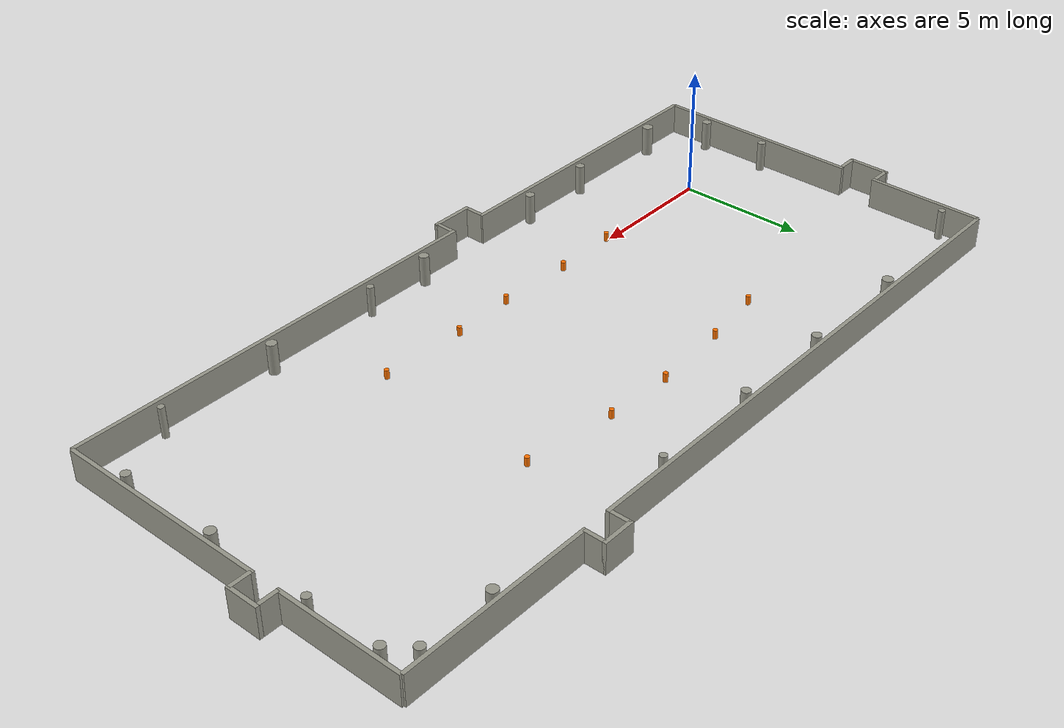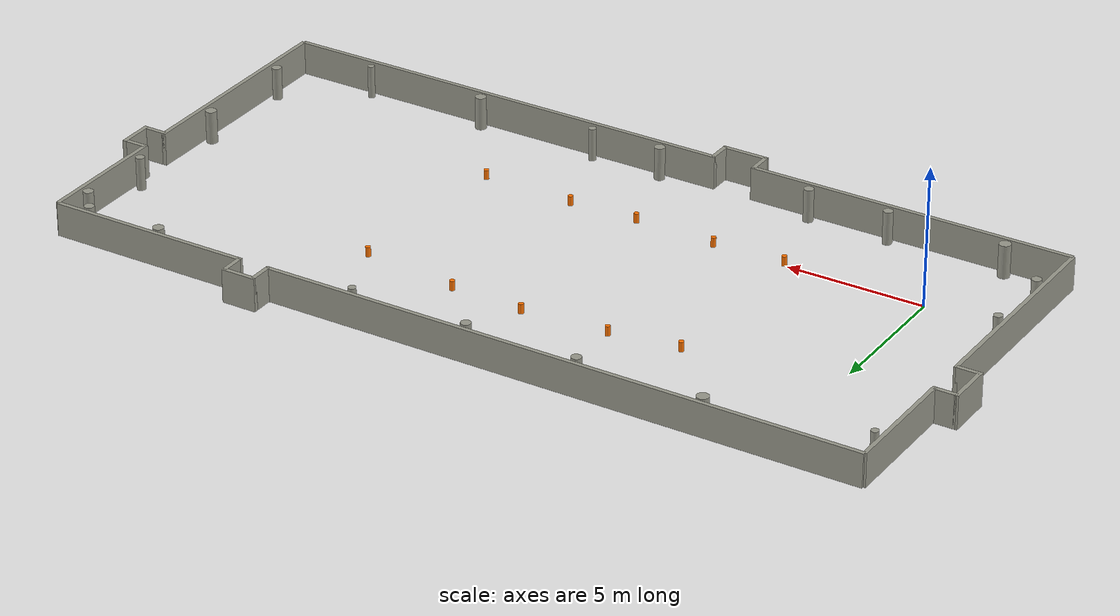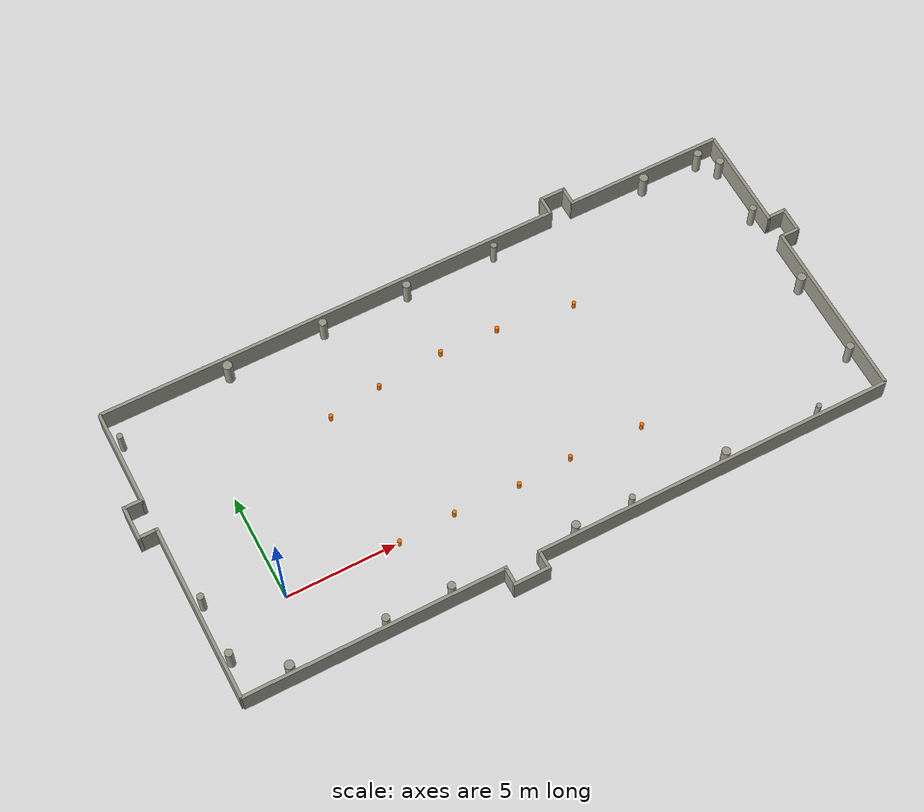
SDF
<sdf version="1.9">
 <world name="default">
  <model name="track_obstacle">
   <static>true</static>
   <link name="obstacle_link">
    <collision name="cone_0_collision">
     <pose>5.152844 -0.050000 0.175000 0.000000 0.000000 0.000000</pose>
     <geometry><cylinder><radius>0.090000</radius><length>0.350000</length></cylinder></geometry>
    </collision>
    <visual name="cone_0_visual">
     <pose>5.152844 -0.050000 0.175000 0.000000 0.000000 0.000000</pose>
     <geometry><cylinder><radius>0.090000</radius><length>0.350000</length></cylinder></geometry>
     <material><ambient>1.0 0.45 0.0 1</ambient><diffuse>1.0 0.45 0.0 1</diffuse></material>
    </visual>
    <collision name="cone_1_collision">
     <pose>7.752844 0.050000 0.175000 0.000000 0.000000 0.000000</pose>
     <geometry><cylinder><radius>0.090000</radius><length>0.350000</length></cylinder></geometry>
    </collision>
    <visual name="cone_1_visual">
     <pose>7.752844 0.050000 0.175000 0.000000 0.000000 0.000000</pose>
     <geometry><cylinder><radius>0.090000</radius><length>0.350000</length></cylinder></geometry>
     <material><ambient>1.0 0.45 0.0 1</ambient><diffuse>1.0 0.45 0.0 1</diffuse></material>
    </visual>
    <collision name="cone_2_collision">
     <pose>10.752844 -0.050000 0.175000 0.000000 0.000000 0.000000</pose>
     <geometry><cylinder><radius>0.090000</radius><length>0.350000</length></cylinder></geometry>
    </collision>
    <visual name="cone_2_visual">
     <pose>10.752844 -0.050000 0.175000 0.000000 0.000000 0.000000</pose>
     <geometry><cylinder><radius>0.090000</radius><length>0.350000</length></cylinder></geometry>
     <material><ambient>1.0 0.45 0.0 1</ambient><diffuse>1.0 0.45 0.0 1</diffuse></material>
    </visual>
    <collision name="cone_3_collision">
     <pose>13.252844 0.050000 0.175000 0.000000 0.000000 0.000000</pose>
     <geometry><cylinder><radius>0.090000</radius><length>0.350000</length></cylinder></geometry>
    </collision>
    <visual name="cone_3_visual">
     <pose>13.252844 0.050000 0.175000 0.000000 0.000000 0.000000</pose>
     <geometry><cylinder><radius>0.090000</radius><length>0.350000</length></cylinder></geometry>
     <material><ambient>1.0 0.45 0.0 1</ambient><diffuse>1.0 0.45 0.0 1</diffuse></material>
    </visual>
    <collision name="cone_4_collision">
     <pose>16.652844 -0.050000 0.175000 0.000000 0.000000 0.000000</pose>
     <geometry><cylinder><radius>0.090000</radius><length>0.350000</length></cylinder></geometry>
    </collision>
    <visual name="cone_4_visual">
     <pose>16.652844 -0.050000 0.175000 0.000000 0.000000 0.000000</pose>
     <geometry><cylinder><radius>0.090000</radius><length>0.350000</length></cylinder></geometry>
     <material><ambient>1.0 0.45 0.0 1</ambient><diffuse>1.0 0.45 0.0 1</diffuse></material>
    </visual>
    <collision name="cone_5_collision">
     <pose>17.027834 6.546967 0.175000 0.000000 0.000000 0.000000</pose>
     <geometry><cylinder><radius>0.090000</radius><length>0.350000</length></cylinder></geometry>
    </collision>
    <visual name="cone_5_visual">
     <pose>17.027834 6.546967 0.175000 0.000000 0.000000 0.000000</pose>
     <geometry><cylinder><radius>0.090000</radius><length>0.350000</length></cylinder></geometry>
     <material><ambient>1.0 0.45 0.0 1</ambient><diffuse>1.0 0.45 0.0 1</diffuse></material>
    </visual>
    <collision name="cone_6_collision">
     <pose>13.455651 7.004684 0.175000 0.000000 0.000000 0.000000</pose>
     <geometry><cylinder><radius>0.090000</radius><length>0.350000</length></cylinder></geometry>
    </collision>
    <visual name="cone_6_visual">
     <pose>13.455651 7.004684 0.175000 0.000000 0.000000 0.000000</pose>
     <geometry><cylinder><radius>0.090000</radius><length>0.350000</length></cylinder></geometry>
     <material><ambient>1.0 0.45 0.0 1</ambient><diffuse>1.0 0.45 0.0 1</diffuse></material>
    </visual>
    <collision name="cone_7_collision">
     <pose>10.764864 7.120115 0.175000 0.000000 0.000000 0.000000</pose>
     <geometry><cylinder><radius>0.090000</radius><length>0.350000</length></cylinder></geometry>
    </collision>
    <visual name="cone_7_visual">
     <pose>10.764864 7.120115 0.175000 0.000000 0.000000 0.000000</pose>
     <geometry><cylinder><radius>0.090000</radius><length>0.350000</length></cylinder></geometry>
     <material><ambient>1.0 0.45 0.0 1</ambient><diffuse>1.0 0.45 0.0 1</diffuse></material>
    </visual>
    <collision name="cone_8_collision">
     <pose>7.674148 6.887476 0.175000 0.000000 0.000000 0.000000</pose>
     <geometry><cylinder><radius>0.090000</radius><length>0.350000</length></cylinder></geometry>
    </collision>
    <visual name="cone_8_visual">
     <pose>7.674148 6.887476 0.175000 0.000000 0.000000 0.000000</pose>
     <geometry><cylinder><radius>0.090000</radius><length>0.350000</length></cylinder></geometry>
     <material><ambient>1.0 0.45 0.0 1</ambient><diffuse>1.0 0.45 0.0 1</diffuse></material>
    </visual>
    <collision name="cone_9_collision">
     <pose>5.199737 6.516947 0.175000 0.000000 0.000000 0.000000</pose>
     <geometry><cylinder><radius>0.090000</radius><length>0.350000</length></cylinder></geometry>
    </collision>
    <visual name="cone_9_visual">
     <pose>5.199737 6.516947 0.175000 0.000000 0.000000 0.000000</pose>
     <geometry><cylinder><radius>0.090000</radius><length>0.350000</length></cylinder></geometry>
     <material><ambient>1.0 0.45 0.0 1</ambient><diffuse>1.0 0.45 0.0 1</diffuse></material>
    </visual>
   </link>
  </model>
  <model name="track_room">
   <static>true</static>
   <link name="room_link">
    <collision name="hall_0_0_collision">
     <pose>2.418237 -3.500000 0.600000 0.000000 0.000000 0.000000</pose>
     <geometry><box><size>11.836475 0.150000 1.200000</size></box></geometry>
    </collision>
    <visual name="hall_0_0_visual">
     <pose>2.418237 -3.500000 0.600000 0.000000 0.000000 0.000000</pose>
     <geometry><box><size>11.836475 0.150000 1.200000</size></box></geometry>
     <material><ambient>0.6 0.6 0.55 1</ambient><diffuse>0.6 0.6 0.55 1</diffuse></material>
    </visual>
    <collision name="hall_0_132_collision">
     <pose>18.120005 -3.500000 0.600000 0.000000 0.000000 0.000000</pose>
     <geometry><box><size>16.759990 0.150000 1.200000</size></box></geometry>
    </collision>
    <visual name="hall_0_132_visual">
     <pose>18.120005 -3.500000 0.600000 0.000000 0.000000 0.000000</pose>
     <geometry><box><size>16.759990 0.150000 1.200000</size></box></geometry>
     <material><ambient>0.6 0.6 0.55 1</ambient><diffuse>0.6 0.6 0.55 1</diffuse></material>
    </visual>
    <collision name="hall_niche_0_collision">
     <pose>9.038242 -4.300000 0.600000 0.000000 0.000000 0.000000</pose>
     <geometry><box><size>1.703535 0.150000 1.200000</size></box></geometry>
    </collision>
    <visual name="hall_niche_0_visual">
     <pose>9.038242 -4.300000 0.600000 0.000000 0.000000 0.000000</pose>
     <geometry><box><size>1.703535 0.150000 1.200000</size></box></geometry>
     <material><ambient>0.6 0.6 0.55 1</ambient><diffuse>0.6 0.6 0.55 1</diffuse></material>
    </visual>
    <collision name="hall_jamb_0_-1_collision">
     <pose>8.261475 -3.900000 0.600000 0.000000 0.000000 0.000000</pose>
     <geometry><box><size>0.150000 0.800000 1.200000</size></box></geometry>
    </collision>
    <visual name="hall_jamb_0_-1_visual">
     <pose>8.261475 -3.900000 0.600000 0.000000 0.000000 0.000000</pose>
     <geometry><box><size>0.150000 0.800000 1.200000</size></box></geometry>
     <material><ambient>0.6 0.6 0.55 1</ambient><diffuse>0.6 0.6 0.55 1</diffuse></material>
    </visual>
    <collision name="hall_jamb_0_1_collision">
     <pose>9.815010 -3.900000 0.600000 0.000000 0.000000 0.000000</pose>
     <geometry><box><size>0.150000 0.800000 1.200000</size></box></geometry>
    </collision>
    <visual name="hall_jamb_0_1_visual">
     <pose>9.815010 -3.900000 0.600000 0.000000 0.000000 0.000000</pose>
     <geometry><box><size>0.150000 0.800000 1.200000</size></box></geometry>
     <material><ambient>0.6 0.6 0.55 1</ambient><diffuse>0.6 0.6 0.55 1</diffuse></material>
    </visual>
    <collision name="hall_1_0_collision">
     <pose>26.500000 0.679222 0.600000 0.000000 0.000000 1.570796</pose>
     <geometry><box><size>8.358443 0.150000 1.200000</size></box></geometry>
    </collision>
    <visual name="hall_1_0_visual">
     <pose>26.500000 0.679222 0.600000 0.000000 0.000000 1.570796</pose>
     <geometry><box><size>8.358443 0.150000 1.200000</size></box></geometry>
     <material><ambient>0.6 0.6 0.55 1</ambient><diffuse>0.6 0.6 0.55 1</diffuse></material>
    </visual>
    <collision name="hall_1_93_collision">
     <pose>26.500000 8.255977 0.600000 0.000000 0.000000 1.570796</pose>
     <geometry><box><size>4.844528 0.150000 1.200000</size></box></geometry>
    </collision>
    <visual name="hall_1_93_visual">
     <pose>26.500000 8.255977 0.600000 0.000000 0.000000 1.570796</pose>
     <geometry><box><size>4.844528 0.150000 1.200000</size></box></geometry>
     <material><ambient>0.6 0.6 0.55 1</ambient><diffuse>0.6 0.6 0.55 1</diffuse></material>
    </visual>
    <collision name="hall_niche_1_collision">
     <pose>27.300000 5.346078 0.600000 0.000000 0.000000 1.570796</pose>
     <geometry><box><size>1.275270 0.150000 1.200000</size></box></geometry>
    </collision>
    <visual name="hall_niche_1_visual">
     <pose>27.300000 5.346078 0.600000 0.000000 0.000000 1.570796</pose>
     <geometry><box><size>1.275270 0.150000 1.200000</size></box></geometry>
     <material><ambient>0.6 0.6 0.55 1</ambient><diffuse>0.6 0.6 0.55 1</diffuse></material>
    </visual>
    <collision name="hall_jamb_1_-1_collision">
     <pose>26.900000 4.783443 0.600000 0.000000 0.000000 1.570796</pose>
     <geometry><box><size>0.150000 0.800000 1.200000</size></box></geometry>
    </collision>
    <visual name="hall_jamb_1_-1_visual">
     <pose>26.900000 4.783443 0.600000 0.000000 0.000000 1.570796</pose>
     <geometry><box><size>0.150000 0.800000 1.200000</size></box></geometry>
     <material><ambient>0.6 0.6 0.55 1</ambient><diffuse>0.6 0.6 0.55 1</diffuse></material>
    </visual>
    <collision name="hall_jamb_1_1_collision">
     <pose>26.900000 5.908713 0.600000 0.000000 0.000000 1.570796</pose>
     <geometry><box><size>0.150000 0.800000 1.200000</size></box></geometry>
    </collision>
    <visual name="hall_jamb_1_1_visual">
     <pose>26.900000 5.908713 0.600000 0.000000 0.000000 1.570796</pose>
     <geometry><box><size>0.150000 0.800000 1.200000</size></box></geometry>
     <material><ambient>0.6 0.6 0.55 1</ambient><diffuse>0.6 0.6 0.55 1</diffuse></material>
    </visual>
    <collision name="hall_2_0_collision">
     <pose>22.812649 10.678241 0.600000 0.000000 0.000000 3.141593</pose>
     <geometry><box><size>7.374702 0.150000 1.200000</size></box></geometry>
    </collision>
    <visual name="hall_2_0_visual">
     <pose>22.812649 10.678241 0.600000 0.000000 0.000000 3.141593</pose>
     <geometry><box><size>7.374702 0.150000 1.200000</size></box></geometry>
     <material><ambient>0.6 0.6 0.55 1</ambient><diffuse>0.6 0.6 0.55 1</diffuse></material>
    </visual>
    <collision name="hall_2_83_collision">
     <pose>7.332707 10.678241 0.600000 0.000000 0.000000 3.141593</pose>
     <geometry><box><size>21.665414 0.150000 1.200000</size></box></geometry>
    </collision>
    <visual name="hall_2_83_visual">
     <pose>7.332707 10.678241 0.600000 0.000000 0.000000 3.141593</pose>
     <geometry><box><size>21.665414 0.150000 1.200000</size></box></geometry>
     <material><ambient>0.6 0.6 0.55 1</ambient><diffuse>0.6 0.6 0.55 1</diffuse></material>
    </visual>
    <collision name="hall_niche_2_collision">
     <pose>18.645356 11.478241 0.600000 0.000000 0.000000 3.141593</pose>
     <geometry><box><size>1.259884 0.150000 1.200000</size></box></geometry>
    </collision>
    <visual name="hall_niche_2_visual">
     <pose>18.645356 11.478241 0.600000 0.000000 0.000000 3.141593</pose>
     <geometry><box><size>1.259884 0.150000 1.200000</size></box></geometry>
     <material><ambient>0.6 0.6 0.55 1</ambient><diffuse>0.6 0.6 0.55 1</diffuse></material>
    </visual>
    <collision name="hall_jamb_2_-1_collision">
     <pose>19.200298 11.078241 0.600000 0.000000 0.000000 3.141593</pose>
     <geometry><box><size>0.150000 0.800000 1.200000</size></box></geometry>
    </collision>
    <visual name="hall_jamb_2_-1_visual">
     <pose>19.200298 11.078241 0.600000 0.000000 0.000000 3.141593</pose>
     <geometry><box><size>0.150000 0.800000 1.200000</size></box></geometry>
     <material><ambient>0.6 0.6 0.55 1</ambient><diffuse>0.6 0.6 0.55 1</diffuse></material>
    </visual>
    <collision name="hall_jamb_2_1_collision">
     <pose>18.090414 11.078241 0.600000 0.000000 0.000000 3.141593</pose>
     <geometry><box><size>0.150000 0.800000 1.200000</size></box></geometry>
    </collision>
    <visual name="hall_jamb_2_1_visual">
     <pose>18.090414 11.078241 0.600000 0.000000 0.000000 3.141593</pose>
     <geometry><box><size>0.150000 0.800000 1.200000</size></box></geometry>
     <material><ambient>0.6 0.6 0.55 1</ambient><diffuse>0.6 0.6 0.55 1</diffuse></material>
    </visual>
    <collision name="hall_3_0_collision">
     <pose>-3.500000 8.404651 0.600000 0.000000 0.000000 -1.570796</pose>
     <geometry><box><size>4.547180 0.150000 1.200000</size></box></geometry>
    </collision>
    <visual name="hall_3_0_visual">
     <pose>-3.500000 8.404651 0.600000 0.000000 0.000000 -1.570796</pose>
     <geometry><box><size>4.547180 0.150000 1.200000</size></box></geometry>
     <material><ambient>0.6 0.6 0.55 1</ambient><diffuse>0.6 0.6 0.55 1</diffuse></material>
    </visual>
    <collision name="hall_3_59_collision">
     <pose>-3.500000 0.634839 0.600000 0.000000 0.000000 -1.570796</pose>
     <geometry><box><size>8.269678 0.150000 1.200000</size></box></geometry>
    </collision>
    <visual name="hall_3_59_visual">
     <pose>-3.500000 0.634839 0.600000 0.000000 0.000000 -1.570796</pose>
     <geometry><box><size>8.269678 0.150000 1.200000</size></box></geometry>
     <material><ambient>0.6 0.6 0.55 1</ambient><diffuse>0.6 0.6 0.55 1</diffuse></material>
    </visual>
    <collision name="hall_niche_3_collision">
     <pose>-4.300000 5.450369 0.600000 0.000000 0.000000 -1.570796</pose>
     <geometry><box><size>1.661383 0.150000 1.200000</size></box></geometry>
    </collision>
    <visual name="hall_niche_3_visual">
     <pose>-4.300000 5.450369 0.600000 0.000000 0.000000 -1.570796</pose>
     <geometry><box><size>1.661383 0.150000 1.200000</size></box></geometry>
     <material><ambient>0.6 0.6 0.55 1</ambient><diffuse>0.6 0.6 0.55 1</diffuse></material>
    </visual>
    <collision name="hall_jamb_3_-1_collision">
     <pose>-3.900000 6.206061 0.600000 0.000000 0.000000 -1.570796</pose>
     <geometry><box><size>0.150000 0.800000 1.200000</size></box></geometry>
    </collision>
    <visual name="hall_jamb_3_-1_visual">
     <pose>-3.900000 6.206061 0.600000 0.000000 0.000000 -1.570796</pose>
     <geometry><box><size>0.150000 0.800000 1.200000</size></box></geometry>
     <material><ambient>0.6 0.6 0.55 1</ambient><diffuse>0.6 0.6 0.55 1</diffuse></material>
    </visual>
    <collision name="hall_jamb_3_1_collision">
     <pose>-3.900000 4.694678 0.600000 0.000000 0.000000 -1.570796</pose>
     <geometry><box><size>0.150000 0.800000 1.200000</size></box></geometry>
    </collision>
    <visual name="hall_jamb_3_1_visual">
     <pose>-3.900000 4.694678 0.600000 0.000000 0.000000 -1.570796</pose>
     <geometry><box><size>0.150000 0.800000 1.200000</size></box></geometry>
     <material><ambient>0.6 0.6 0.55 1</ambient><diffuse>0.6 0.6 0.55 1</diffuse></material>
    </visual>
    <collision name="column_0_22_collision">
     <pose>-1.245422 -3.150000 0.600000 0.000000 0.000000 0.000000</pose>
     <geometry><cylinder><radius>0.208075</radius><length>1.200000</length></cylinder></geometry>
    </collision>
    <visual name="column_0_22_visual">
     <pose>-1.245422 -3.150000 0.600000 0.000000 0.000000 0.000000</pose>
     <geometry><cylinder><radius>0.208075</radius><length>1.200000</length></cylinder></geometry>
     <material><ambient>0.6 0.6 0.55 1</ambient><diffuse>0.6 0.6 0.55 1</diffuse></material>
    </visual>
    <collision name="column_0_65_collision">
     <pose>3.015339 -3.150000 0.600000 0.000000 0.000000 0.000000</pose>
     <geometry><cylinder><radius>0.170013</radius><length>1.200000</length></cylinder></geometry>
    </collision>
    <visual name="column_0_65_visual">
     <pose>3.015339 -3.150000 0.600000 0.000000 0.000000 0.000000</pose>
     <geometry><cylinder><radius>0.170013</radius><length>1.200000</length></cylinder></geometry>
     <material><ambient>0.6 0.6 0.55 1</ambient><diffuse>0.6 0.6 0.55 1</diffuse></material>
    </visual>
    <collision name="column_0_94_collision">
     <pose>5.975643 -3.150000 0.600000 0.000000 0.000000 0.000000</pose>
     <geometry><cylinder><radius>0.176002</radius><length>1.200000</length></cylinder></geometry>
    </collision>
    <visual name="column_0_94_visual">
     <pose>5.975643 -3.150000 0.600000 0.000000 0.000000 0.000000</pose>
     <geometry><cylinder><radius>0.176002</radius><length>1.200000</length></cylinder></geometry>
     <material><ambient>0.6 0.6 0.55 1</ambient><diffuse>0.6 0.6 0.55 1</diffuse></material>
    </visual>
    <collision name="column_0_151_collision">
     <pose>11.699164 -3.150000 0.600000 0.000000 0.000000 0.000000</pose>
     <geometry><cylinder><radius>0.185176</radius><length>1.200000</length></cylinder></geometry>
    </collision>
    <visual name="column_0_151_visual">
     <pose>11.699164 -3.150000 0.600000 0.000000 0.000000 0.000000</pose>
     <geometry><cylinder><radius>0.185176</radius><length>1.200000</length></cylinder></geometry>
     <material><ambient>0.6 0.6 0.55 1</ambient><diffuse>0.6 0.6 0.55 1</diffuse></material>
    </visual>
    <collision name="column_0_178_collision">
     <pose>14.356303 -3.150000 0.600000 0.000000 0.000000 0.000000</pose>
     <geometry><cylinder><radius>0.137767</radius><length>1.200000</length></cylinder></geometry>
    </collision>
    <visual name="column_0_178_visual">
     <pose>14.356303 -3.150000 0.600000 0.000000 0.000000 0.000000</pose>
     <geometry><cylinder><radius>0.137767</radius><length>1.200000</length></cylinder></geometry>
     <material><ambient>0.6 0.6 0.55 1</ambient><diffuse>0.6 0.6 0.55 1</diffuse></material>
    </visual>
    <collision name="column_0_223_collision">
     <pose>18.862967 -3.150000 0.600000 0.000000 0.000000 0.000000</pose>
     <geometry><cylinder><radius>0.195434</radius><length>1.200000</length></cylinder></geometry>
    </collision>
    <visual name="column_0_223_visual">
     <pose>18.862967 -3.150000 0.600000 0.000000 0.000000 0.000000</pose>
     <geometry><cylinder><radius>0.195434</radius><length>1.200000</length></cylinder></geometry>
     <material><ambient>0.6 0.6 0.55 1</ambient><diffuse>0.6 0.6 0.55 1</diffuse></material>
    </visual>
    <collision name="column_0_269_collision">
     <pose>23.411975 -3.150000 0.600000 0.000000 0.000000 0.000000</pose>
     <geometry><cylinder><radius>0.122296</radius><length>1.200000</length></cylinder></geometry>
    </collision>
    <visual name="column_0_269_visual">
     <pose>23.411975 -3.150000 0.600000 0.000000 0.000000 0.000000</pose>
     <geometry><cylinder><radius>0.122296</radius><length>1.200000</length></cylinder></geometry>
     <material><ambient>0.6 0.6 0.55 1</ambient><diffuse>0.6 0.6 0.55 1</diffuse></material>
    </visual>
    <collision name="column_1_21_collision">
     <pose>26.150000 -1.319442 0.600000 0.000000 0.000000 0.000000</pose>
     <geometry><cylinder><radius>0.172604</radius><length>1.200000</length></cylinder></geometry>
    </collision>
    <visual name="column_1_21_visual">
     <pose>26.150000 -1.319442 0.600000 0.000000 0.000000 0.000000</pose>
     <geometry><cylinder><radius>0.172604</radius><length>1.200000</length></cylinder></geometry>
     <material><ambient>0.6 0.6 0.55 1</ambient><diffuse>0.6 0.6 0.55 1</diffuse></material>
    </visual>
    <collision name="column_1_60_collision">
     <pose>26.150000 2.591865 0.600000 0.000000 0.000000 0.000000</pose>
     <geometry><cylinder><radius>0.199425</radius><length>1.200000</length></cylinder></geometry>
    </collision>
    <visual name="column_1_60_visual">
     <pose>26.150000 2.591865 0.600000 0.000000 0.000000 0.000000</pose>
     <geometry><cylinder><radius>0.199425</radius><length>1.200000</length></cylinder></geometry>
     <material><ambient>0.6 0.6 0.55 1</ambient><diffuse>0.6 0.6 0.55 1</diffuse></material>
    </visual>
    <collision name="column_1_101_collision">
     <pose>26.150000 6.652516 0.600000 0.000000 0.000000 0.000000</pose>
     <geometry><cylinder><radius>0.157337</radius><length>1.200000</length></cylinder></geometry>
    </collision>
    <visual name="column_1_101_visual">
     <pose>26.150000 6.652516 0.600000 0.000000 0.000000 0.000000</pose>
     <geometry><cylinder><radius>0.157337</radius><length>1.200000</length></cylinder></geometry>
     <material><ambient>0.6 0.6 0.55 1</ambient><diffuse>0.6 0.6 0.55 1</diffuse></material>
    </visual>
    <collision name="column_1_130_collision">
     <pose>26.150000 9.506228 0.600000 0.000000 0.000000 0.000000</pose>
     <geometry><cylinder><radius>0.181838</radius><length>1.200000</length></cylinder></geometry>
    </collision>
    <visual name="column_1_130_visual">
     <pose>26.150000 9.506228 0.600000 0.000000 0.000000 0.000000</pose>
     <geometry><cylinder><radius>0.181838</radius><length>1.200000</length></cylinder></geometry>
     <material><ambient>0.6 0.6 0.55 1</ambient><diffuse>0.6 0.6 0.55 1</diffuse></material>
    </visual>
    <collision name="column_2_10_collision">
     <pose>25.485857 10.328241 0.600000 0.000000 0.000000 0.000000</pose>
     <geometry><cylinder><radius>0.180330</radius><length>1.200000</length></cylinder></geometry>
    </collision>
    <visual name="column_2_10_visual">
     <pose>25.485857 10.328241 0.600000 0.000000 0.000000 0.000000</pose>
     <geometry><cylinder><radius>0.180330</radius><length>1.200000</length></cylinder></geometry>
     <material><ambient>0.6 0.6 0.55 1</ambient><diffuse>0.6 0.6 0.55 1</diffuse></material>
    </visual>
    <collision name="column_2_38_collision">
     <pose>22.675084 10.328241 0.600000 0.000000 0.000000 0.000000</pose>
     <geometry><cylinder><radius>0.199501</radius><length>1.200000</length></cylinder></geometry>
    </collision>
    <visual name="column_2_38_visual">
     <pose>22.675084 10.328241 0.600000 0.000000 0.000000 0.000000</pose>
     <geometry><cylinder><radius>0.199501</radius><length>1.200000</length></cylinder></geometry>
     <material><ambient>0.6 0.6 0.55 1</ambient><diffuse>0.6 0.6 0.55 1</diffuse></material>
    </visual>
    <collision name="column_2_114_collision">
     <pose>15.074656 10.328241 0.600000 0.000000 0.000000 0.000000</pose>
     <geometry><cylinder><radius>0.138024</radius><length>1.200000</length></cylinder></geometry>
    </collision>
    <visual name="column_2_114_visual">
     <pose>15.074656 10.328241 0.600000 0.000000 0.000000 0.000000</pose>
     <geometry><cylinder><radius>0.138024</radius><length>1.200000</length></cylinder></geometry>
     <material><ambient>0.6 0.6 0.55 1</ambient><diffuse>0.6 0.6 0.55 1</diffuse></material>
    </visual>
    <collision name="column_2_157_collision">
     <pose>10.781107 10.328241 0.600000 0.000000 0.000000 0.000000</pose>
     <geometry><cylinder><radius>0.176654</radius><length>1.200000</length></cylinder></geometry>
    </collision>
    <visual name="column_2_157_visual">
     <pose>10.781107 10.328241 0.600000 0.000000 0.000000 0.000000</pose>
     <geometry><cylinder><radius>0.176654</radius><length>1.200000</length></cylinder></geometry>
     <material><ambient>0.6 0.6 0.55 1</ambient><diffuse>0.6 0.6 0.55 1</diffuse></material>
    </visual>
    <collision name="column_2_197_collision">
     <pose>6.732771 10.328241 0.600000 0.000000 0.000000 0.000000</pose>
     <geometry><cylinder><radius>0.179845</radius><length>1.200000</length></cylinder></geometry>
    </collision>
    <visual name="column_2_197_visual">
     <pose>6.732771 10.328241 0.600000 0.000000 0.000000 0.000000</pose>
     <geometry><cylinder><radius>0.179845</radius><length>1.200000</length></cylinder></geometry>
     <material><ambient>0.6 0.6 0.55 1</ambient><diffuse>0.6 0.6 0.55 1</diffuse></material>
    </visual>
    <collision name="column_2_242_collision">
     <pose>2.236439 10.328241 0.600000 0.000000 0.000000 0.000000</pose>
     <geometry><cylinder><radius>0.212402</radius><length>1.200000</length></cylinder></geometry>
    </collision>
    <visual name="column_2_242_visual">
     <pose>2.236439 10.328241 0.600000 0.000000 0.000000 0.000000</pose>
     <geometry><cylinder><radius>0.212402</radius><length>1.200000</length></cylinder></geometry>
     <material><ambient>0.6 0.6 0.55 1</ambient><diffuse>0.6 0.6 0.55 1</diffuse></material>
    </visual>
    <collision name="column_3_13_collision">
     <pose>-3.150000 9.363177 0.600000 0.000000 0.000000 0.000000</pose>
     <geometry><cylinder><radius>0.134939</radius><length>1.200000</length></cylinder></geometry>
    </collision>
    <visual name="column_3_13_visual">
     <pose>-3.150000 9.363177 0.600000 0.000000 0.000000 0.000000</pose>
     <geometry><cylinder><radius>0.134939</radius><length>1.200000</length></cylinder></geometry>
     <material><ambient>0.6 0.6 0.55 1</ambient><diffuse>0.6 0.6 0.55 1</diffuse></material>
    </visual>
    <collision name="column_3_95_collision">
     <pose>-3.150000 1.164155 0.600000 0.000000 0.000000 0.000000</pose>
     <geometry><cylinder><radius>0.153973</radius><length>1.200000</length></cylinder></geometry>
    </collision>
    <visual name="column_3_95_visual">
     <pose>-3.150000 1.164155 0.600000 0.000000 0.000000 0.000000</pose>
     <geometry><cylinder><radius>0.153973</radius><length>1.200000</length></cylinder></geometry>
     <material><ambient>0.6 0.6 0.55 1</ambient><diffuse>0.6 0.6 0.55 1</diffuse></material>
    </visual>
    <collision name="column_3_122_collision">
     <pose>-3.150000 -1.566680 0.600000 0.000000 0.000000 0.000000</pose>
     <geometry><cylinder><radius>0.174500</radius><length>1.200000</length></cylinder></geometry>
    </collision>
    <visual name="column_3_122_visual">
     <pose>-3.150000 -1.566680 0.600000 0.000000 0.000000 0.000000</pose>
     <geometry><cylinder><radius>0.174500</radius><length>1.200000</length></cylinder></geometry>
     <material><ambient>0.6 0.6 0.55 1</ambient><diffuse>0.6 0.6 0.55 1</diffuse></material>
    </visual>
   </link>
  </model>
 </world>
</sdf>
